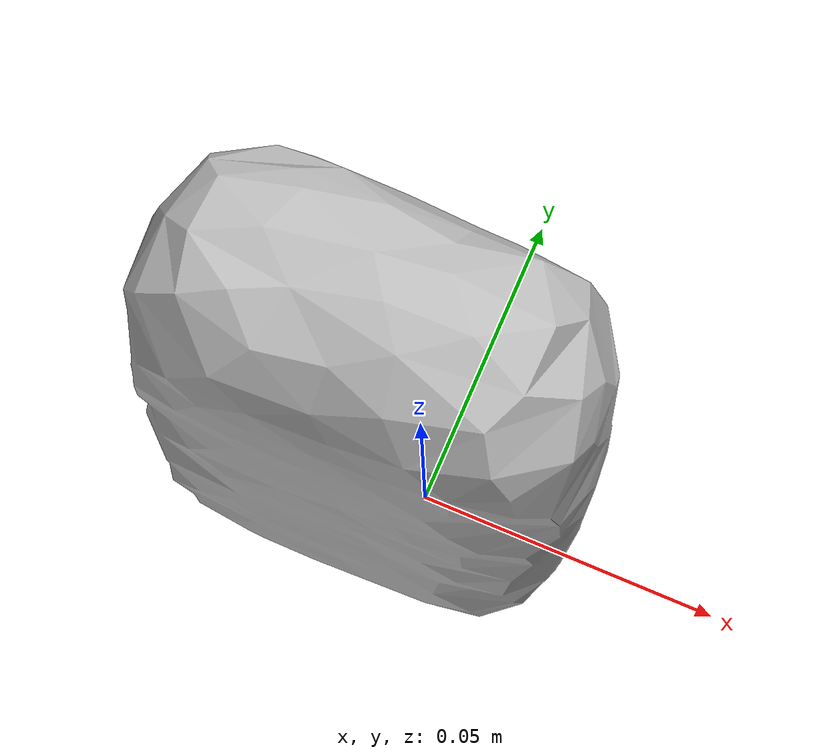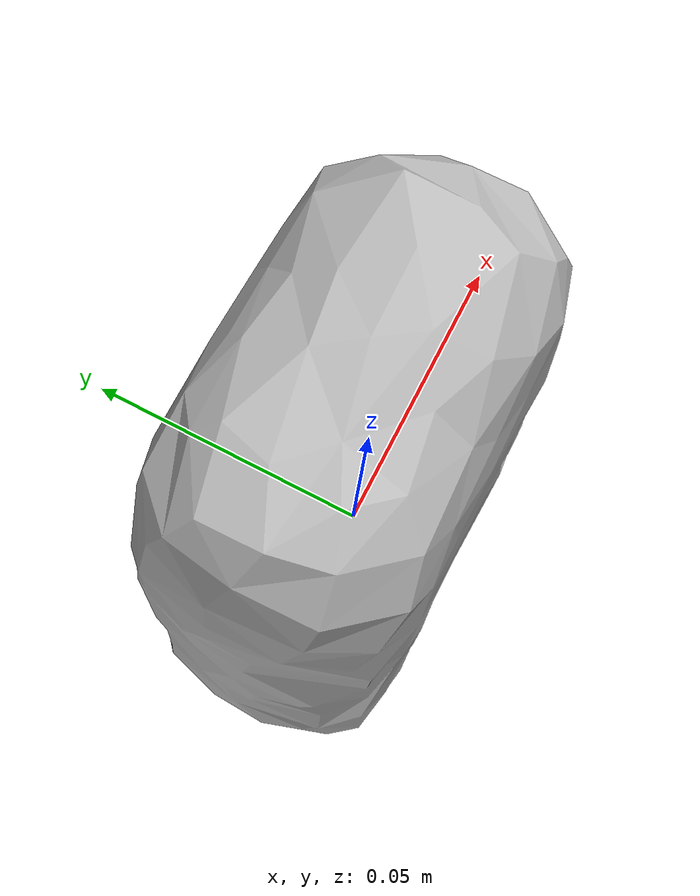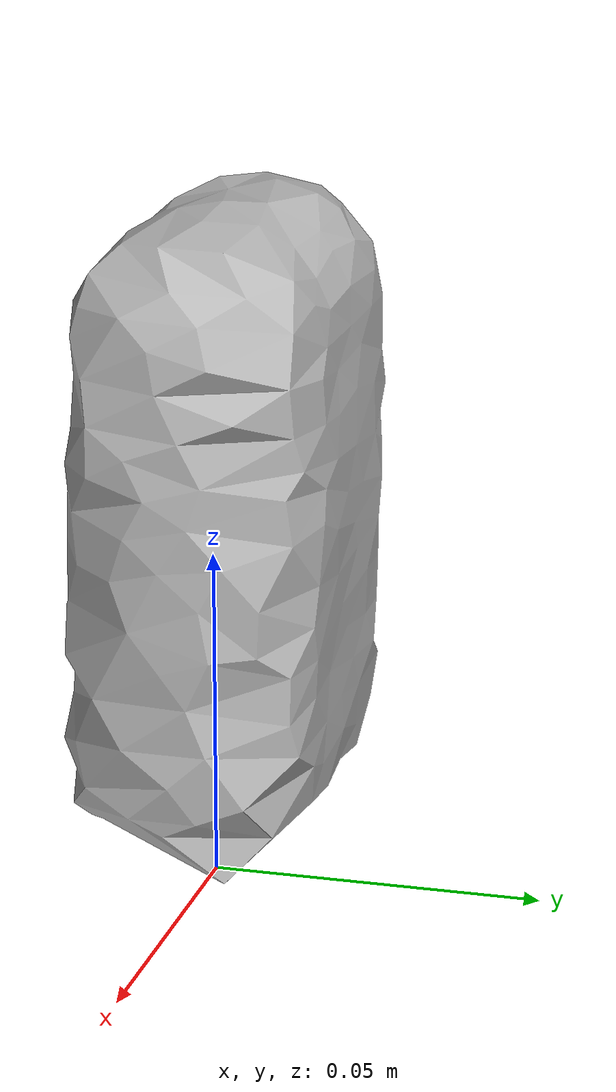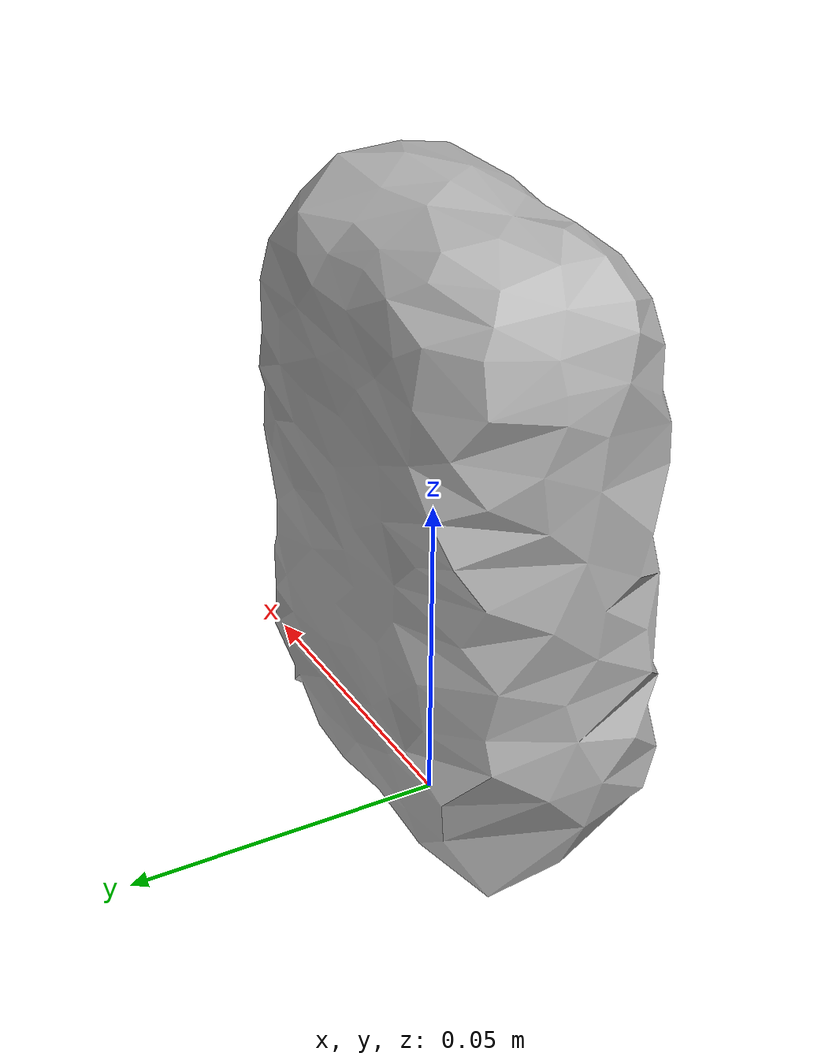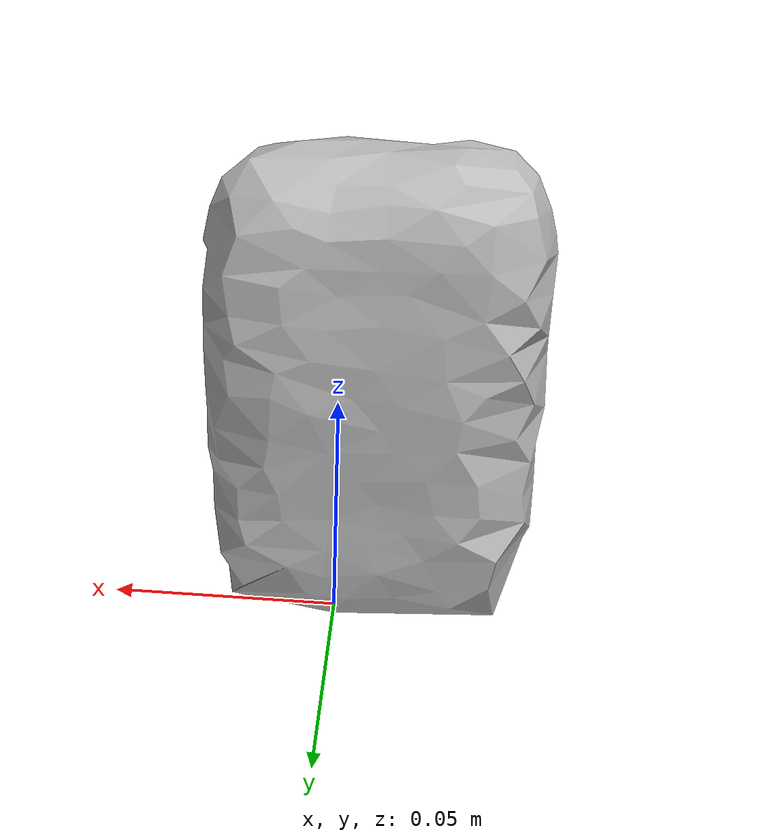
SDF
<?xml version="1.0" ?>
<sdf version="1.4">
  <model name="soap2">
    <link name="soap2_link">
      <inertial>
        <pose>0 0 0 0 0 0</pose>
        <mass>0.08</mass>
      </inertial>

      <visual name="soap2_visual">
        <pose>0 0 0 0 0 0</pose>
        <material>
          <script>
            <uri>model://soap2/materials/scripts</uri>
            <uri>model://soap2/materials/textures</uri>
            <name>soap2</name>
          </script>
        </material>
        <geometry>
          <mesh>
            <uri>model://soap2/meshes/soap2_aligned.dae</uri>
          </mesh>
        </geometry>
      </visual>

      <collision name="soap2_collision">
        <pose>-0.0 0.0 0.052 0 0 0</pose>
        <geometry>
          <box>
            <size>0.065 0.04 0.105</size>
          </box>
        </geometry>
      </collision>

    </link>
  </model>
</sdf>
